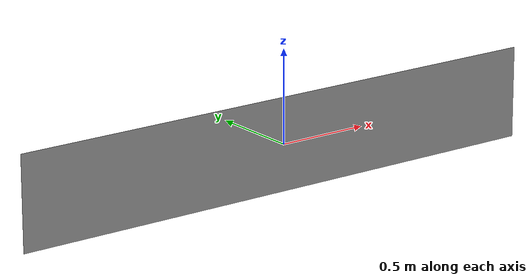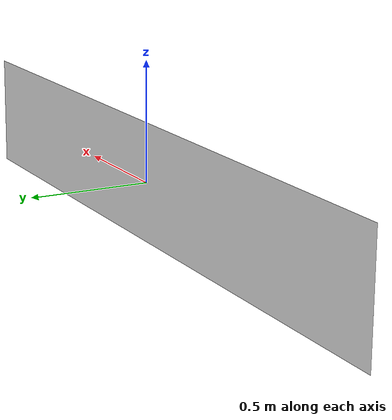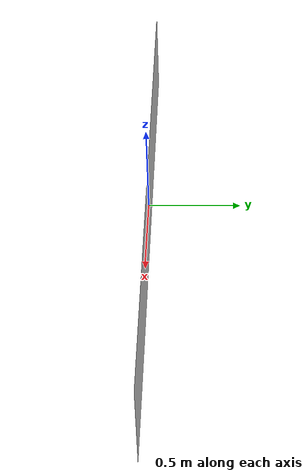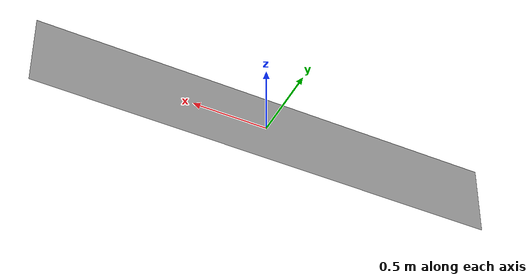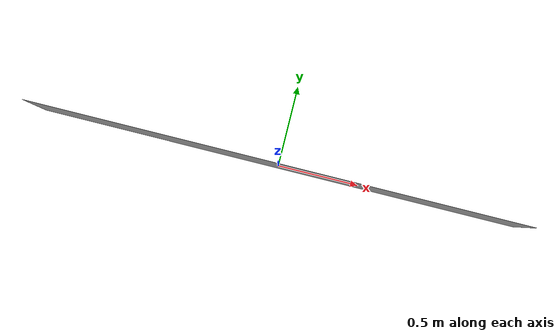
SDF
<?xml version="1.0"?>
<sdf version='1.4'>
  <model name="wall">
  <link name='wall'>
    <pose>0 0 0 0 0 0</pose>
    <inertial>
      <inertia>
        <ixx>1e-6</ixx>
        <ixy>0</ixy>
        <ixz>0</ixz>
        <iyy>1e-6</iyy>
        <iyz>0</iyz>
        <izz>1e-6</izz>
      </inertia>
      <mass>1e-6</mass>
    </inertial>
    <collision name='collision'>
      <pose>0 0 0 0 0 0</pose>
      <geometry>
        <box>
          <size>3.1 1e-6 0.5</size>
        </box>
      </geometry>
    </collision>
    <visual name='visual'>
      <geometry>
        <box>
          <size>3.1 1e-6 0.5</size>
        </box>
      </geometry>
      <material>
      <script>
        <uri>file://materials/scripts</uri>
        <uri>file://materials/textures</uri>
        <name>wall</name>
      </script>
      </material>
    </visual>
  </link>
</model>
</sdf>
